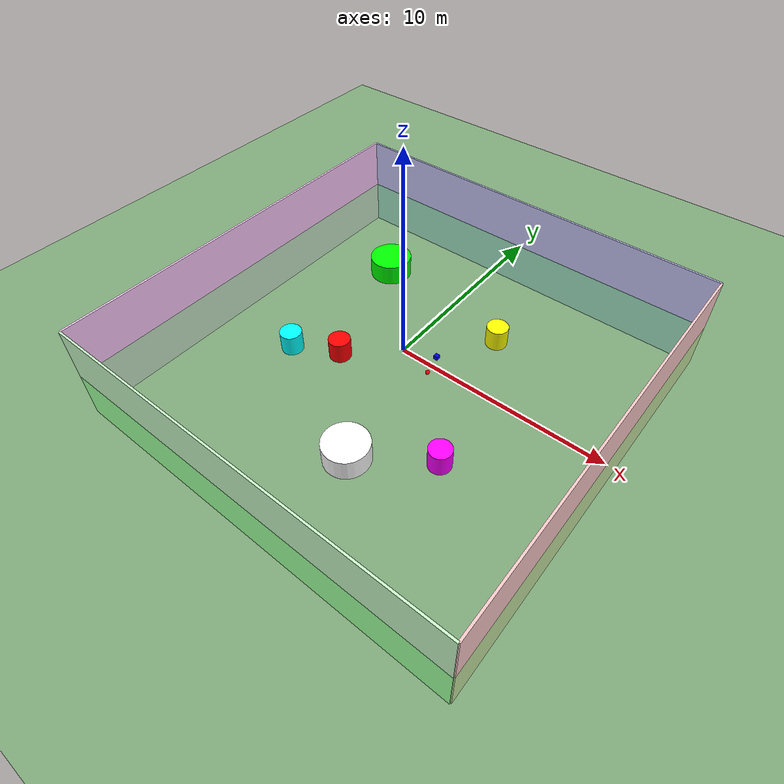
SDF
<?xml version="1.0" ?>
<sdf version="1.8">
  <world name="dogworld">
    <physics name="1ms" type="ignored">
      <max_step_size>0.001</max_step_size>
      <real_time_factor>1.0</real_time_factor>
    </physics>

    <!-- Plugins -->
    <plugin
      filename="gz-sim-physics-system"
      name="gz::sim::systems::Physics">
    </plugin>
    <plugin
      filename="gz-sim-sensors-system"
      name="gz::sim::systems::Sensors">
      <render_engine>ogre2</render_engine>
    </plugin>
    <plugin
      filename="gz-sim-user-commands-system"
      name="gz::sim::systems::UserCommands">
    </plugin>
    <plugin
      filename="gz-sim-scene-broadcaster-system"
      name="gz::sim::systems::SceneBroadcaster">
    </plugin>

    <gui fullscreen="0">
        <plugin filename="ImageDisplay" name="Image Display">
          <ignition-gui>
            <property key="state" type="string">docked</property>
          </ignition-gui>
        </plugin>
    </gui>

    <!-- Lights -->
    <light type="directional" name="sun">
      <cast_shadows>true</cast_shadows>
      <pose>0 0 10 0 0 0</pose>
      <diffuse>0.8 0.8 0.8 1</diffuse>
      <specular>0.2 0.2 0.2 1</specular>
      <attenuation>
        <range>1000</range>
        <constant>0.9</constant>
        <linear>0.01</linear>
        <quadratic>0.001</quadratic>
      </attenuation>
      <direction>-0.5 0.1 -0.9</direction>
    </light>

    <!-- Ground Plane -->
    <model name="ground_plane">
      <static>true</static>
      <link name="link">
        <collision name="collision">
          <geometry>
            <plane>
              <normal>0 0 1</normal>
              <size>100 100</size>
            </plane>
          </geometry>
        </collision>
        <visual name="visual">
          <geometry>
            <plane>
              <normal>0 0 1</normal>
              <size>100 100</size>
            </plane>
          </geometry>
          <material>
            <ambient>0.2 0.8 0.2 1</ambient>
            <diffuse>0.2 0.8 0.2 1</diffuse>
            <specular>0.2 0.8 0.2 1</specular>
          </material>
        </visual>
      </link>
    </model>

    <!-- RedBall -->
    <model name="RedBall">
      <pose>1.75 -0.5 0.1 0 0 0</pose>
      <link name="sphere_link">
        <inertial>
          <inertia>
            <ixx>0.004</ixx>
            <ixy>0</ixy>
            <ixz>0</ixz>
            <iyy>0.004</iyy>
            <iyz>0</iyz>
            <izz>0.004</izz>
          </inertia>
          <mass>0.1</mass>
        </inertial>
        <collision name="sphere_collision">
          <geometry>
            <sphere>
              <radius>0.1</radius>
            </sphere>
          </geometry>
        </collision>
        <visual name="sphere_visual">
          <geometry>
            <sphere>
              <radius>0.1</radius>
            </sphere>
          </geometry>
          <material>
            <ambient>1 0 0 1</ambient>
            <diffuse>1 0 0 1</diffuse>
            <specular>1 0 0 1</specular>
          </material>
        </visual>
      </link>
      <static>true</static>
    </model>

    <!-- BlueBox -->
    <model name="BlueBox">
      <pose>1.5 0.5 0.1 0 0 0</pose>
      <link name="box_link">
        <inertial>
          <inertia>
            <ixx>0.0013</ixx>
            <ixy>0</ixy>
            <ixz>0</ixz>
            <iyy>0.0013</iyy>
            <iyz>0</iyz>
            <izz>0.0013</izz>
          </inertia>
          <mass>0.2</mass>
        </inertial>
        <collision name="box_collision">
          <geometry>
            <box>
              <size>0.2 0.2 0.2</size>
            </box>
          </geometry>
        </collision>
        <visual name="box_visual">
          <geometry>
            <box>
              <size>0.2 0.2 0.2</size>
            </box>
          </geometry>
          <material>
            <ambient>0 0 1 1</ambient>
            <diffuse>0 0 1 1</diffuse>
            <specular>0 0 1 1</specular>
          </material>
        </visual>
      </link>
      <static>true</static>
    </model>

    <!-- Cylinder 1 -->
    <model name="cylinder1">
      <pose>3 3 0.5 0 0 0</pose>
      <link name="cylinder1_link">
        <inertial>
          <inertia>
            <ixx>0.1458</ixx>
            <ixy>0</ixy>
            <ixz>0</ixz>
            <iyy>0.1458</iyy>
            <iyz>0</iyz>
            <izz>0.125</izz>
          </inertia>
          <mass>1.0</mass>
        </inertial>
        <collision name="cylinder1_collision">
          <geometry>
            <cylinder>
              <radius>0.5</radius>
              <length>1.0</length>
            </cylinder>
          </geometry>
        </collision>
        <visual name="cylinder1_visual">
          <geometry>
            <cylinder>
              <radius>0.5</radius>
              <length>1.0</length>
            </cylinder>
          </geometry>
          <material>
            <ambient>1 1 0 1</ambient>
            <diffuse>1 1 0 1</diffuse>
            <specular>1 1 0 1</specular>
          </material>
        </visual>
      </link>
      <static>true</static>
    </model>

    <!-- Cylinder 2 -->
    <model name="cylinder2">
      <pose>-4 -3 0.5 0 0 0</pose>
      <link name="cylinder2_link">
        <inertial>
          <inertia>
            <ixx>0.1458</ixx>
            <ixy>0</ixy>
            <ixz>0</ixz>
            <iyy>0.1458</iyy>
            <iyz>0</iyz>
            <izz>0.125</izz>
          </inertia>
          <mass>1.0</mass>
        </inertial>
        <collision name="cylinder2_collision">
          <geometry>
            <cylinder>
              <radius>0.5</radius>
              <length>1.0</length>
            </cylinder>
          </geometry>
        </collision>
        <visual name="cylinder2_visual">
          <geometry>
            <cylinder>
              <radius>0.5</radius>
              <length>1.0</length>
            </cylinder>
          </geometry>
          <material>
            <ambient>0 1 1 1</ambient>
            <diffuse>0 1 1 1</diffuse>
            <specular>0 1 1 1</specular>
          </material>
        </visual>
      </link>
      <static>true</static>
    </model>

    <!-- Cylinder 3 -->
    <model name="cylinder3">
      <pose>5 -4 0.5 0 0 0</pose>
      <link name="cylinder3_link">
        <inertial>
          <inertia>
            <ixx>0.1458</ixx>
            <ixy>0</ixy>
            <ixz>0</ixz>
            <iyy>0.1458</iyy>
            <iyz>0</iyz>
            <izz>0.125</izz>
          </inertia>
          <mass>1.0</mass>
        </inertial>
        <collision name="cylinder3_collision">
          <geometry>
            <cylinder>
              <radius>0.5</radius>
              <length>1.0</length>
            </cylinder>
          </geometry>
        </collision>
        <visual name="cylinder3_visual">
          <geometry>
            <cylinder>
              <radius>0.5</radius>
              <length>1.0</length>
            </cylinder>
          </geometry>
          <material>
            <ambient>1 0 1 1</ambient>
            <diffuse>1 0 1 1</diffuse>
            <specular>1 0 1 1</specular>
          </material>
        </visual>
      </link>
      <static>true</static>
    </model>

    <!-- Cylinder 4 -->
    <model name="cylinder4">
      <pose>-2 -2 0.5 0 0 0</pose>
      <link name="cylinder4_link">
        <inertial>
          <inertia>
            <ixx>0.1458</ixx>
            <ixy>0</ixy>
            <ixz>0</ixz>
            <iyy>0.1458</iyy>
            <iyz>0</iyz>
            <izz>0.125</izz>
          </inertia>
          <mass>1.0</mass>
        </inertial>
        <collision name="cylinder4_collision">
          <geometry>
            <cylinder>
              <radius>0.5</radius>
              <length>1.0</length>
            </cylinder>
          </geometry>
        </collision>
        <visual name="cylinder4_visual">
          <geometry>
            <cylinder>
              <radius>0.5</radius>
              <length>1.0</length>
            </cylinder>
          </geometry>
          <material>
            <ambient>1 0 0 1</ambient>
            <diffuse>1 0 0 1</diffuse>
            <specular>1 0 0 1</specular>
          </material>
        </visual>
      </link>
      <static>true</static>
    </model>

    <!-- Cylinder 5 -->
    <model name="cylinder5">
      <pose>2 -6 0.5 0 0 0</pose>
      <link name="cylinder5_link">
        <inertial>
          <inertia>
            <ixx>0.5</ixx>
            <ixy>0</ixy>
            <ixz>0</ixz>
            <iyy>0.5</iyy>
            <iyz>0</iyz>
            <izz>1.0</izz>
          </inertia>
          <mass>2.0</mass>
        </inertial>
        <collision name="cylinder5_collision">
          <geometry>
            <cylinder>
              <radius>1.0</radius>
              <length>1.0</length>
            </cylinder>
          </geometry>
        </collision>
        <visual name="cylinder5_visual">
          <geometry>
            <cylinder>
              <radius>1.0</radius>
              <length>1.0</length>
            </cylinder>
          </geometry>
          <material>
            <ambient>1 1 1 1</ambient>
            <diffuse>1 1 1 1</diffuse>
            <specular>1 1 1 1</specular>
          </material>
        </visual>
      </link>
      <static>true</static>
    </model>

    <!-- Cylinder 6 -->
    <model name="cylinder6">
      <pose>-4 4 0.5 0 0 0</pose>
      <link name="cylinder6_link">
        <inertial>
          <inertia>
            <ixx>0.5</ixx>
            <ixy>0</ixy>
            <ixz>0</ixz>
            <iyy>0.5</iyy>
            <iyz>0</iyz>
            <izz>1.0</izz>
          </inertia>
          <mass>2.0</mass>
        </inertial>
        <collision name="cylinder6_collision">
          <geometry>
            <cylinder>
              <radius>1.0</radius>
              <length>1.0</length>
            </cylinder>
          </geometry>
        </collision>
        <visual name="cylinder6_visual">
          <geometry>
            <cylinder>
              <radius>1.0</radius>
              <length>1.0</length>
            </cylinder>
          </geometry>
          <material>
            <ambient>0 1 0 1</ambient>
            <diffuse>0 1 0 1</diffuse>
            <specular>0 1 0 1</specular>
          </material>
        </visual>
      </link>
      <static>true</static>
    </model>

    <!-- Walls -->
    <model name="wall1">
      <pose>0 10 0.1 0 0 0</pose>
      <link name="wall1_link">
        <inertial>
          <inertia>
            <ixx>400</ixx>
            <ixy>0</ixy>
            <ixz>0</ixz>
            <iyy>500</iyy>
            <iyz>0</iyz>
            <izz>400</izz>
          </inertia>
          <mass>10</mass>
        </inertial>
        <collision name="wall1_collision">
          <geometry>
            <box>
              <size>20 0.1 5</size>
            </box>
          </geometry>
        </collision>
        <visual name="wall1_visual">
          <geometry>
            <box>
              <size>20 0.1 5</size>
            </box>
          </geometry>
          <material>
            <ambient>0.8 0.8 1 1</ambient>
            <diffuse>0.8 0.8 1 1</diffuse>
            <specular>0.8 0.8 1 1</specular>
          </material>
        </visual>
      </link>
      <static>true</static>
    </model>

    <model name="wall2">
      <pose>0 -10 0.1 0 0 0</pose>
      <link name="wall2_link">
        <inertial>
          <inertia>
            <ixx>400</ixx>
            <ixy>0</ixy>
            <ixz>0</ixz>
            <iyy>500</iyy>
            <iyz>0</iyz>
            <izz>400</izz>
          </inertia>
          <mass>10</mass>
        </inertial>
        <collision name="wall2_collision">
          <geometry>
            <box>
              <size>20 0.1 5</size>
            </box>
          </geometry>
        </collision>
        <visual name="wall2_visual">
          <geometry>
            <box>
              <size>20 0.1 5</size>
            </box>
          </geometry>
          <material>
            <ambient>0.8 1 0.8 1</ambient>
            <diffuse>0.8 1 0.8 1</diffuse>
            <specular>0.8 1 0.8 1</specular>
          </material>
        </visual>
      </link>
      <static>true</static>
    </model>

      <model name="wall3">
      <pose>10 0 0.1 0 0 0</pose>
      <link name="wall3_link">
        <inertial>
          <inertia>
            <ixx>500</ixx>
            <ixy>0</ixy>
            <ixz>0</ixz>
            <iyy>400</iyy>
            <iyz>0</iyz>
            <izz>400</izz>
          </inertia>
          <mass>10</mass>
        </inertial>
        <collision name="wall3_collision">
          <geometry>
            <box>
              <size>0.1 20 5</size>
            </box>
          </geometry>
        </collision>
        <visual name="wall3_visual">
          <geometry>
            <box>
              <size>0.1 20 5</size>
            </box>
          </geometry>
          <material>
            <ambient>1 0.8 0.8 1</ambient>
            <diffuse>1 0.8 0.8 1</diffuse>
            <specular>1 0.8 0.8 1</specular>
          </material>
        </visual>
      </link>
      <static>true</static>
    </model>

    <model name="wall4">
      <pose>-10 0 0.1 0 0 0</pose>
      <link name="wall4_link">
        <inertial>
          <inertia>
            <ixx>500</ixx>
            <ixy>0</ixy>
            <ixz>0</ixz>
            <iyy>400</iyy>
            <iyz>0</iyz>
            <izz>400</izz>
          </inertia>
          <mass>10</mass>
        </inertial>
        <collision name="wall4_collision">
          <geometry>
            <box>
              <size>0.1 20 5</size>
            </box>
          </geometry>
        </collision>
        <visual name="wall4_visual">
          <geometry>
            <box>
              <size>0.1 20 5</size>
            </box>
          </geometry>
          <material>
            <ambient>1 0.8 1 1</ambient>
            <diffuse>1 0.8 1 1</diffuse>
            <specular>1 0.8 1 1</specular>
          </material>
        </visual>
      </link>
      <static>true</static>
    </model>
  </world>
</sdf>
